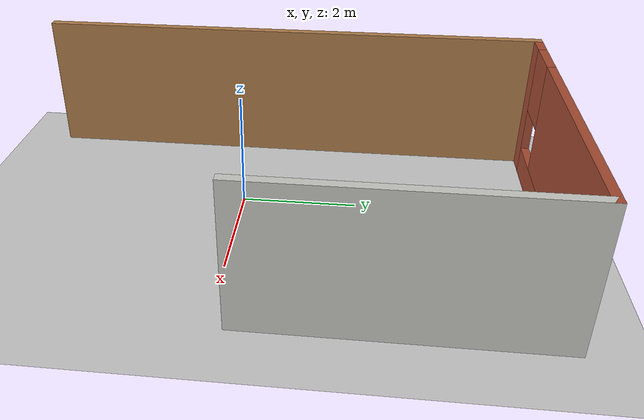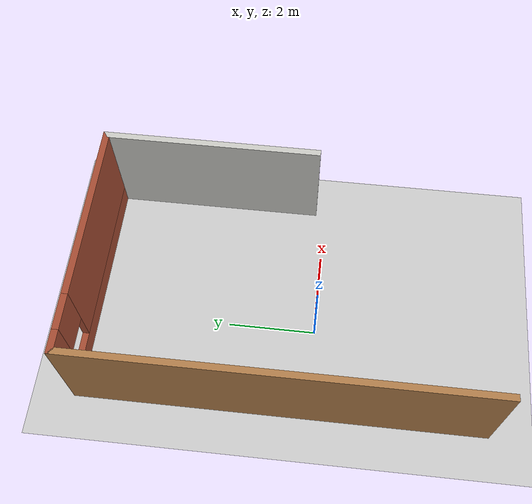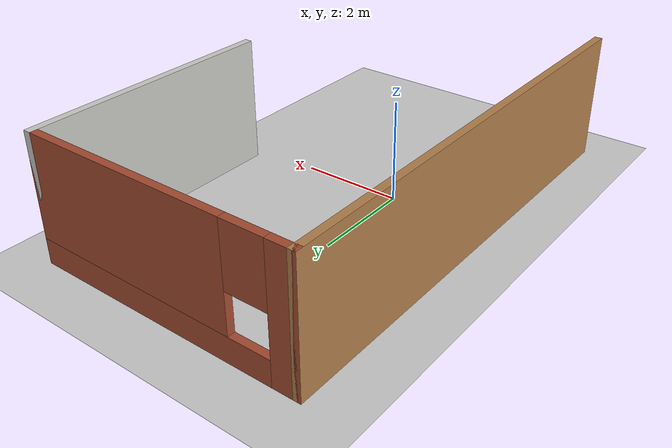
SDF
<sdf version="1.7">
 <world name="default">
  <light name="sun" type="directional">
   <pose>0 0 10 0 -0 0</pose>
   <diffuse>0.8 0.8 0.8 1</diffuse>
   <specular>0.2 0.2 0.2 1</specular>
   <attenuation>
    <range>1000</range>
    <constant>0.9</constant>
    <linear>0.01</linear>
    <quadratic>0.001</quadratic>
   </attenuation>
   <direction>-0.5 0.1 -0.9</direction>
   <spot><inner_angle>0</inner_angle><outer_angle>0</outer_angle><falloff>0</falloff></spot>
  </light>
  <model name="ground_plane">
   <static>1</static>
   <link name="link">
    <collision name="collision">
     <geometry><plane><normal>0 0 1</normal><size>100 100</size></plane></geometry>
     <surface>
      <contact><collide_bitmask>65535</collide_bitmask></contact>
      <friction><ode><mu>100</mu><mu2>50</mu2></ode></friction>
     </surface>
    </collision>
    <visual name="visual">
     <cast_shadows>0</cast_shadows>
     <geometry><plane><normal>0 0 1</normal><size>100 100</size></plane></geometry>
     <material>
      <script><uri>file://media/materials/scripts/gazebo.material</uri><name>Gazebo/Grey</name></script>
     </material>
    </visual>
   </link>
  </model>
  <gravity>0 0 -9.8</gravity>
  <magnetic_field>6e-06 2.3e-05 -4.2e-05</magnetic_field>
  <atmosphere type="adiabatic"/>
  <physics type="ode">
   <max_step_size>0.001</max_step_size>
   <real_time_factor>1</real_time_factor>
   <real_time_update_rate>1000</real_time_update_rate>
  </physics>
  <scene><ambient>0.4 0.4 0.4 1</ambient><background>0.7 0.7 0.7 1</background><shadows>1</shadows></scene>
  <audio><device>default</device></audio>
  <spherical_coordinates>
   <surface_model>EARTH_WGS84</surface_model>
   <latitude_deg>0</latitude_deg>
   <longitude_deg>0</longitude_deg>
   <elevation>0</elevation>
   <heading_deg>0</heading_deg>
  </spherical_coordinates>
  <model name="RoomTEstUR">
   <pose>0.655 0.61 0 0 -0 0</pose>
   <link name="Wall_0">
    <collision name="Wall_0_Collision">
     <geometry><box><size>9.25 0.15 2.5</size></box></geometry>
     <pose>0 0 1.25 0 -0 0</pose>
    </collision>
    <visual name="Wall_0_Visual">
     <pose>0 0 1.25 0 -0 0</pose>
     <geometry><box><size>9.25 0.15 2.5</size></box></geometry>
     <material>
      <script><uri>file://media/materials/scripts/gazebo.material</uri><name>Gazebo/Wood</name></script>
      <ambient>1 1 1 1</ambient>
     </material>
     <meta><layer>0</layer></meta>
    </visual>
    <pose>-2.675 -0 0 0 -0 1.5708</pose>
   </link>
   <link name="Wall_3">
    <pose>0 4.55 0 0 -0 0</pose>
    <visual name="Wall_3_Visual_0">
     <pose>-2.4849 0 1.25 0 -0 0</pose>
     <geometry><box><size>0.5302 0.15 2.5</size></box></geometry>
     <material>
      <script><uri>file://media/materials/scripts/gazebo.material</uri><name>Gazebo/Bricks</name></script>
      <ambient>1 1 1 1</ambient>
     </material>
     <meta><layer>0</layer></meta>
    </visual>
    <collision name="Wall_3_Collision_0">
     <geometry><box><size>0.5302 0.15 2.5</size></box></geometry>
     <pose>-2.4849 0 1.25 0 -0 0</pose>
    </collision>
    <visual name="Wall_3_Visual_1">
     <pose>0.2651 0 0.25 0 -0 0</pose>
     <geometry><box><size>4.9698 0.15 0.5</size></box></geometry>
     <material>
      <script><uri>file://media/materials/scripts/gazebo.material</uri><name>Gazebo/Bricks</name></script>
      <ambient>1 1 1 1</ambient>
     </material>
     <meta><layer>0</layer></meta>
    </visual>
    <collision name="Wall_3_Collision_1">
     <geometry><box><size>4.9698 0.15 0.5</size></box></geometry>
     <pose>0.2651 0 0.25 0 -0 0</pose>
    </collision>
    <visual name="Wall_3_Visual_2">
     <pose>0.6651 0 1.5 0 -0 0</pose>
     <geometry><box><size>4.1698 0.15 2</size></box></geometry>
     <material>
      <script><uri>file://media/materials/scripts/gazebo.material</uri><name>Gazebo/Bricks</name></script>
      <ambient>1 1 1 1</ambient>
     </material>
     <meta><layer>0</layer></meta>
    </visual>
    <collision name="Wall_3_Collision_2">
     <geometry><box><size>4.1698 0.15 2</size></box></geometry>
     <pose>0.6651 0 1.5 0 -0 0</pose>
    </collision>
    <visual name="Wall_3_Visual_3">
     <pose>-1.8198 0 1.9 0 -0 0</pose>
     <geometry><box><size>0.8 0.15 1.2</size></box></geometry>
     <material>
      <script><uri>file://media/materials/scripts/gazebo.material</uri><name>Gazebo/Bricks</name></script>
      <ambient>1 1 1 1</ambient>
     </material>
     <meta><layer>0</layer></meta>
    </visual>
    <collision name="Wall_3_Collision_3">
     <geometry><box><size>0.8 0.15 1.2</size></box></geometry>
     <pose>-1.8198 0 1.9 0 -0 0</pose>
    </collision>
   </link>
   <link name="Wall_4">
    <collision name="Wall_4_Collision">
     <geometry><box><size>5 0.15 2.5</size></box></geometry>
     <pose>0 0 1.25 0 -0 0</pose>
    </collision>
    <visual name="Wall_4_Visual">
     <pose>0 0 1.25 0 -0 0</pose>
     <geometry><box><size>5 0.15 2.5</size></box></geometry>
     <material>
      <script><uri>file://media/materials/scripts/gazebo.material</uri><name>Gazebo/CeilingTiled</name></script>
      <ambient>0.435294 0.796078 0.67451 1</ambient>
     </material>
     <meta><layer>0</layer></meta>
    </visual>
    <pose>2.675 2.125 0 0 -0 -1.5708</pose>
   </link>
   <static>1</static>
  </model>
 </world>
</sdf>
